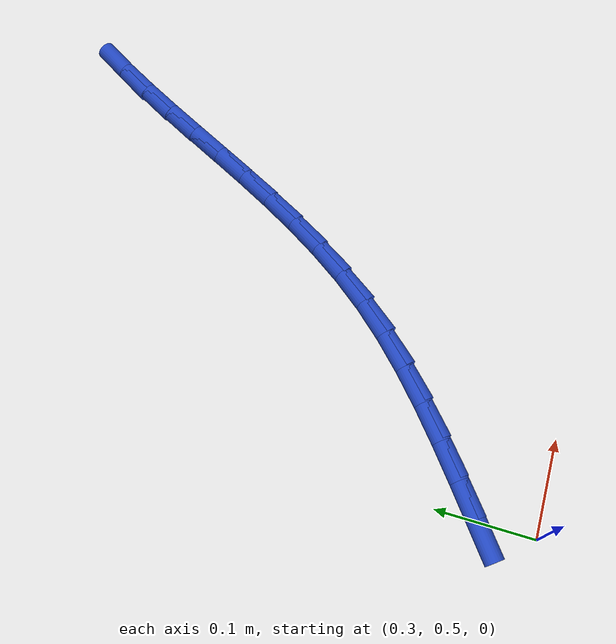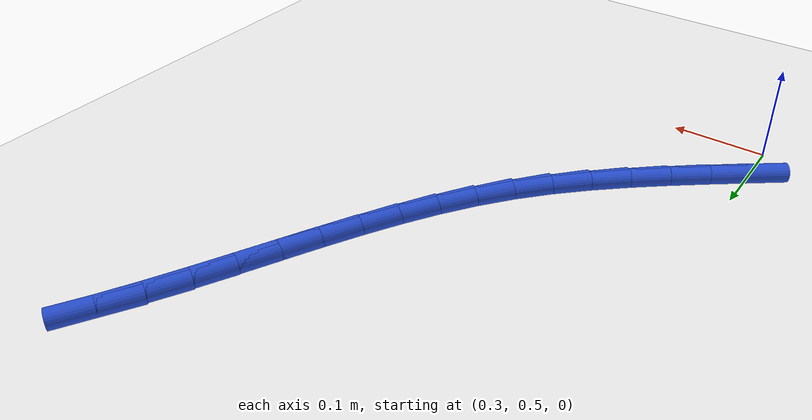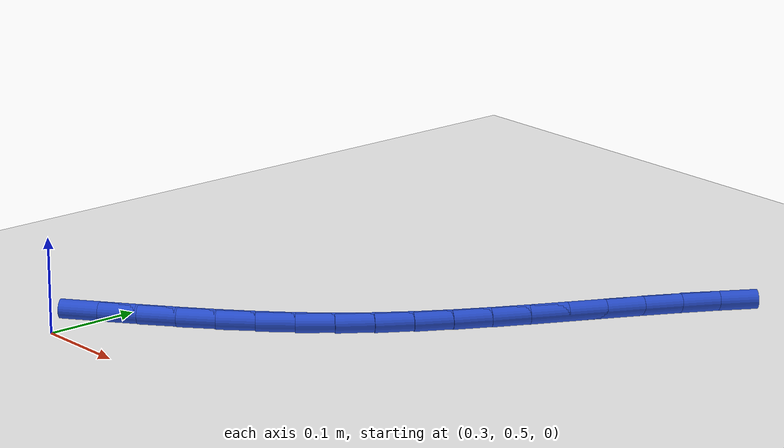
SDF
<sdf version="1.6">
 <world name="default">
  <model name="ground_plane">
   <static>1</static>
   <link name="link">
    <collision name="collision">
     <geometry><plane><normal>0 0 1</normal><size>100 100</size></plane></geometry>
     <surface><friction><ode><mu>100</mu><mu2>50</mu2></ode></friction></surface>
    </collision>
    <visual name="visual">
     <cast_shadows>0</cast_shadows>
     <geometry><plane><normal>0 0 1</normal><size>100 100</size></plane></geometry>
     <material>
      <script><uri>file://media/materials/scripts/gazebo.material</uri><name>Gazebo/WhiteGlow</name></script>
     </material>
    </visual>
   </link>
  </model>
  <model name="line">
   <link name="link_17">
    <pose>0.29864268356629053 0.559203191332604 0.01 0 1.57 0.6472868964107775</pose>
    <collision name="collision">
     <geometry><cylinder><radius>0.01</radius><length>0.08</length></cylinder></geometry>
    </collision>
    <visual name="visual">
     <material>
      <script><name>Gazebo/Blue</name><uri>file://media/materials/scripts/gazebo.material</uri></script>
     </material>
     <geometry><cylinder><radius>0.01</radius><length>0.08</length></cylinder></geometry>
    </visual>
   </link>
   <link name="link_18">
    <pose>0.33137011022430085 0.5839429058187836 0.01 0 1.57 0.6603198498563069</pose>
    <collision name="collision">
     <geometry><cylinder><radius>0.01</radius><length>0.08</length></cylinder></geometry>
    </collision>
    <visual name="visual">
     <material>
      <script><name>Gazebo/Blue</name><uri>file://media/materials/scripts/gazebo.material</uri></script>
     </material>
     <geometry><cylinder><radius>0.01</radius><length>0.08</length></cylinder></geometry>
    </visual>
   </link>
   <link name="link_19">
    <pose>0.36370080256208753 0.6090514888260867 0.01 0 1.57 0.6841858280186689</pose>
    <collision name="collision">
     <geometry><cylinder><radius>0.01</radius><length>0.08</length></cylinder></geometry>
    </collision>
    <visual name="visual">
     <material>
      <script><name>Gazebo/Blue</name><uri>file://media/materials/scripts/gazebo.material</uri></script>
     </material>
     <geometry><cylinder><radius>0.01</radius><length>0.08</length></cylinder></geometry>
    </visual>
   </link>
   <link name="link_20">
    <pose>0.39524687956565807 0.6347807218987951 0.01 0 1.57 0.7192919118300661</pose>
    <collision name="collision">
     <geometry><cylinder><radius>0.01</radius><length>0.08</length></cylinder></geometry>
    </collision>
    <visual name="visual">
     <material>
      <script><name>Gazebo/Blue</name><uri>file://media/materials/scripts/gazebo.material</uri></script>
     </material>
     <geometry><cylinder><radius>0.01</radius><length>0.08</length></cylinder></geometry>
    </visual>
   </link>
   <link name="link_21">
    <pose>0.4256204602210196 0.6613823865811892 0.01 0 1.57 0.7661691377934439</pose>
    <collision name="collision">
     <geometry><cylinder><radius>0.01</radius><length>0.08</length></cylinder></geometry>
    </collision>
    <visual name="visual">
     <material>
      <script><name>Gazebo/Blue</name><uri>file://media/materials/scripts/gazebo.material</uri></script>
     </material>
     <geometry><cylinder><radius>0.01</radius><length>0.08</length></cylinder></geometry>
    </visual>
   </link>
   <link name="link_22">
    <pose>0.4544336635141799 0.6891082644175504 0.01 0 1.57 0.8253457193741824</pose>
    <collision name="collision">
     <geometry><cylinder><radius>0.01</radius><length>0.08</length></cylinder></geometry>
    </collision>
    <visual name="visual">
     <material>
      <script><name>Gazebo/Blue</name><uri>file://media/materials/scripts/gazebo.material</uri></script>
     </material>
     <geometry><cylinder><radius>0.01</radius><length>0.08</length></cylinder></geometry>
    </visual>
   </link>
   <link name="link_23">
    <pose>0.4812986084408836 0.7182101369457274 0.01 0 1.57 0.8933440506550244</pose>
    <collision name="collision">
     <geometry><cylinder><radius>0.01</radius><length>0.08</length></cylinder></geometry>
    </collision>
    <visual name="visual">
     <material>
      <script><name>Gazebo/Blue</name><uri>file://media/materials/scripts/gazebo.material</uri></script>
     </material>
     <geometry><cylinder><radius>0.01</radius><length>0.08</length></cylinder></geometry>
    </visual>
   </link>
   <link name="link_24">
    <pose>0.5059526958101064 0.7488570328154204 0.01 0 1.57 0.9548218915692187</pose>
    <collision name="collision">
     <geometry><cylinder><radius>0.01</radius><length>0.08</length></cylinder></geometry>
    </collision>
    <visual name="visual">
     <material>
      <script><name>Gazebo/Blue</name><uri>file://media/materials/scripts/gazebo.material</uri></script>
     </material>
     <geometry><cylinder><radius>0.01</radius><length>0.08</length></cylinder></geometry>
    </visual>
   </link>
   <link name="link_25">
    <pose>0.5286280516902501 0.7808911978576369 0.01 0 1.57 1.0054759125805273</pose>
    <collision name="collision">
     <geometry><cylinder><radius>0.01</radius><length>0.08</length></cylinder></geometry>
    </collision>
    <visual name="visual">
     <material>
      <script><name>Gazebo/Blue</name><uri>file://media/materials/scripts/gazebo.material</uri></script>
     </material>
     <geometry><cylinder><radius>0.01</radius><length>0.08</length></cylinder></geometry>
    </visual>
   </link>
   <link name="link_26">
    <pose>0.5496789033605138 0.8140742259110534 0.01 0 1.57 1.0450730989019015</pose>
    <collision name="collision">
     <geometry><cylinder><radius>0.01</radius><length>0.08</length></cylinder></geometry>
    </collision>
    <visual name="visual">
     <material>
      <script><name>Gazebo/Blue</name><uri>file://media/materials/scripts/gazebo.material</uri></script>
     </material>
     <geometry><cylinder><radius>0.01</radius><length>0.08</length></cylinder></geometry>
    </visual>
   </link>
   <link name="link_27">
    <pose>0.5694594781000962 0.8481677108143462 0.01 0 1.57 1.0736356791171813</pose>
    <collision name="collision">
     <geometry><cylinder><radius>0.01</radius><length>0.08</length></cylinder></geometry>
    </collision>
    <visual name="visual">
     <material>
      <script><name>Gazebo/Blue</name><uri>file://media/materials/scripts/gazebo.material</uri></script>
     </material>
     <geometry><cylinder><radius>0.01</radius><length>0.08</length></cylinder></geometry>
    </visual>
   </link>
   <link name="link_28">
    <pose>0.5883240031881958 0.8829332464061914 0.01 0 1.57 1.0912965118283868</pose>
    <collision name="collision">
     <geometry><cylinder><radius>0.01</radius><length>0.08</length></cylinder></geometry>
    </collision>
    <visual name="visual">
     <material>
      <script><name>Gazebo/Blue</name><uri>file://media/materials/scripts/gazebo.material</uri></script>
     </material>
     <geometry><cylinder><radius>0.01</radius><length>0.08</length></cylinder></geometry>
    </visual>
   </link>
   <link name="link_29">
    <pose>0.6066267059040114 0.9181324265252656 0.01 0 1.57 1.0981957454495095</pose>
    <collision name="collision">
     <geometry><cylinder><radius>0.01</radius><length>0.08</length></cylinder></geometry>
    </collision>
    <visual name="visual">
     <material>
      <script><name>Gazebo/Blue</name><uri>file://media/materials/scripts/gazebo.material</uri></script>
     </material>
     <geometry><cylinder><radius>0.01</radius><length>0.08</length></cylinder></geometry>
    </visual>
   </link>
   <link name="link_30">
    <pose>0.6247218135267418 0.9535268450102449 0.01 0 1.57 1.0944197567955964</pose>
    <collision name="collision">
     <geometry><cylinder><radius>0.01</radius><length>0.08</length></cylinder></geometry>
    </collision>
    <visual name="visual">
     <material>
      <script><name>Gazebo/Blue</name><uri>file://media/materials/scripts/gazebo.material</uri></script>
     </material>
     <geometry><cylinder><radius>0.01</radius><length>0.08</length></cylinder></geometry>
    </visual>
   </link>
   <link name="link_31">
    <pose>0.6429635533355856 0.9888780956998058 0.01 0 1.57 1.079978664449211</pose>
    <collision name="collision">
     <geometry><cylinder><radius>0.01</radius><length>0.08</length></cylinder></geometry>
    </collision>
    <visual name="visual">
     <material>
      <script><name>Gazebo/Blue</name><uri>file://media/materials/scripts/gazebo.material</uri></script>
     </material>
     <geometry><cylinder><radius>0.01</radius><length>0.08</length></cylinder></geometry>
    </visual>
   </link>
   <link name="link_32">
    <pose>0.6617061526097416 1.0239477724326247 0.01 0 1.57 1.0548196645291898</pose>
    <collision name="collision">
     <geometry><cylinder><radius>0.01</radius><length>0.08</length></cylinder></geometry>
    </collision>
    <visual name="visual">
     <material>
      <script><name>Gazebo/Blue</name><uri>file://media/materials/scripts/gazebo.material</uri></script>
     </material>
     <geometry><cylinder><radius>0.01</radius><length>0.08</length></cylinder></geometry>
    </visual>
   </link>
   <link name="link_33">
    <pose>0.6813038386284085 1.0584974690473774 0.01 0 1.57 1.0188998135889233</pose>
    <collision name="collision">
     <geometry><cylinder><radius>0.01</radius><length>0.08</length></cylinder></geometry>
    </collision>
    <visual name="visual">
     <material>
      <script><name>Gazebo/Blue</name><uri>file://media/materials/scripts/gazebo.material</uri></script>
     </material>
     <geometry><cylinder><radius>0.01</radius><length>0.08</length></cylinder></geometry>
    </visual>
   </link>
  </model>
 </world>
</sdf>
